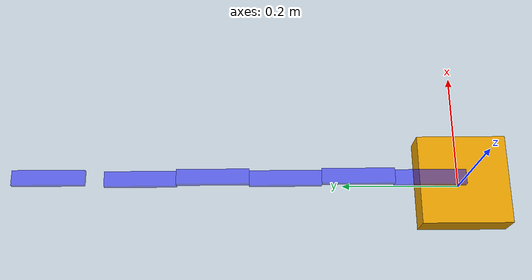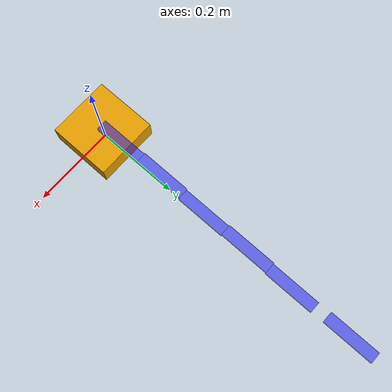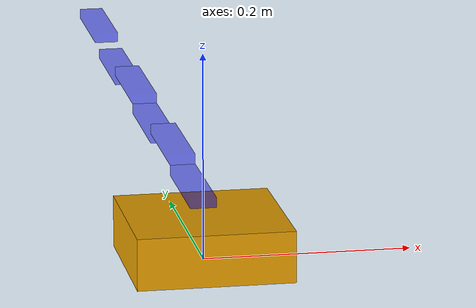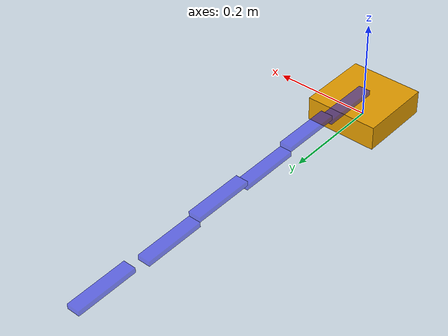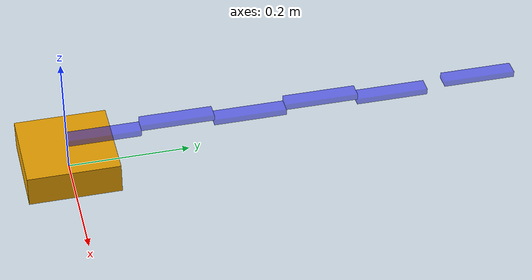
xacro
<robot name="my_robot">
  <!-- the model -->
  <link name="base_link">
    <inertial>
      <mass value="1000" />
      <origin xyz="0 0 0" />
      <inertia ixx="50.0" ixy="0.0" ixz="0.0" iyy="50.0" iyz="0.0" izz="50.0" />
    </inertial>
    <visual>
      <origin rpy="0 0 0" xyz="0 0 0.02"/>
      <geometry>
        <box size="0.15 0.15 0.05" />
      </geometry>
    </visual>
    <collision>
      <origin rpy="0 0 0" xyz="0 0 0.02"/>
      <geometry>
        <box size="0.15 0.15 0.06" />
      </geometry>
    </collision>
  </link>

  <joint name="joint1" type="continuous">
    <origin rpy="0 1.57079632679 0" xyz="0 0 0.05"/>
    <parent link="base_link"/>
    <child link="arm_link1"/>
  </joint>

  <link name="arm_link1">
    <inertial>
      <origin rpy="0 0 0" xyz="-0.005 0.06 0"/>
      <mass value="0.1"/>
      <inertia ixx="1.67E-03" ixy="0" ixz="0" iyy="0.02166" iyz="0" izz="0.02166"/>
    </inertial>
    <visual>
      <origin rpy="0 0 0" xyz="-0.005 0.06 0"/>
      <geometry>
        <box size="0.01 0.12 0.025" />
        <!-- does not need to match collision -->
      </geometry>
      <material name="">
        <color rgba="0 0 1 0.5"/>
      </material>
    </visual>
    <collision>
      <origin rpy="0 0 0" xyz="-0.005 0.06 0"/>
      <geometry>
        <box size="0.01 0.12 0.025" />
      </geometry>
    </collision>
  </link>

  <joint name="joint2" type="continuous">
    <origin rpy="0 0 0" xyz="-0.01 0.12 0"/>
    <parent link="arm_link1"/>
    <child link="arm_link2"/>
  </joint>

  <link name="arm_link2">
    <inertial>
      <origin rpy="0 0 0" xyz="-0.005 0.06 0"/>
      <mass value="0.1"/>
      <inertia ixx="1.67E-03" ixy="0" ixz="0" iyy="0.02166" iyz="0" izz="0.02166"/>
    </inertial>
    <visual>
      <origin rpy="0 0 0" xyz="-0.005 0.06 0"/>
      <geometry>
        <box size="0.01 0.12 0.025" />
        <!-- does not need to match collision -->
      </geometry>
      <material name="">
        <color rgba="0 0 1 0.5"/>
      </material>
    </visual>
    <collision>
      <origin rpy="0 0 0" xyz="-0.005 0.06 0"/>
      <geometry>
        <box size="0.01 0.12 0.025" />
      </geometry>
    </collision>
  </link>

  <joint name="joint3" type="continuous">
    <origin rpy="0 0 0" xyz="0.01 0.12 0"/>
    <parent link="arm_link2"/>
    <child link="arm_link3"/>
  </joint>

  <link name="arm_link3">
    <inertial>
      <origin rpy="0 0 0" xyz="-0.005 0.06 0"/>
      <mass value="0.1"/>
      <inertia ixx="1.67E-03" ixy="0" ixz="0" iyy="0.02166" iyz="0" izz="0.02166"/>
    </inertial>
    <visual>
      <origin rpy="0 0 0" xyz="-0.005 0.06 0"/>
      <geometry>
        <box size="0.01 0.12 0.025" />
        <!-- does not need to match collision -->
      </geometry>
      <material name="">
        <color rgba="0 0 1 0.5"/>
      </material>
    </visual>
    <collision>
      <origin rpy="0 0 0" xyz="-0.005 0.06 0"/>
      <geometry>
        <box size="0.01 0.12 0.025" />
      </geometry>
    </collision>
  </link>

  <joint name="joint4" type="continuous">
    <origin rpy="0 0 0" xyz="-0.01 0.12 0"/>
    <parent link="arm_link3"/>
    <child link="arm_link4"/>
  </joint>

  <link name="arm_link4">
    <inertial>
      <origin rpy="0 0 0" xyz="-0.005 0.06 0"/>
      <mass value="0.1"/>
      <inertia ixx="1.67E-03" ixy="0" ixz="0" iyy="0.02166" iyz="0" izz="0.02166"/>
    </inertial>
    <visual>
      <origin rpy="0 0 0" xyz="-0.005 0.06 0"/>
      <geometry>
        <box size="0.01 0.12 0.025" />
        <!-- does not need to match collision -->
      </geometry>
      <material name="">
        <color rgba="0 0 1 0.5"/>
      </material>
    </visual>
    <collision>
      <origin rpy="0 0 0" xyz="-0.005 0.06 0"/>
      <geometry>
        <box size="0.01 0.12 0.025" />
      </geometry>
    </collision>
  </link>

  <joint name="joint5" type="continuous">
    <origin rpy="0 0 0" xyz="0.01 0.12 0"/>
    <parent link="arm_link4"/>
    <child link="arm_link5"/>
  </joint>

  <link name="arm_link5">
    <inertial>
      <origin rpy="0 0 0" xyz="-0.005 0.06 0"/>
      <mass value="0.1"/>
      <inertia ixx="1.67E-03" ixy="0" ixz="0" iyy="0.02166" iyz="0" izz="0.02166"/>
    </inertial>
    <visual>
      <origin rpy="0 0 0" xyz="-0.005 0.06 0"/>
      <geometry>
        <box size="0.01 0.12 0.025" />
        <!-- does not need to match collision -->
      </geometry>
      <material name="">
        <color rgba="0 0 1 0.5"/>
      </material>
    </visual>
    <collision>
      <origin rpy="0 0 0" xyz="-0.005 0.06 0"/>
      <geometry>
        <box size="0.01 0.12 0.025" />
      </geometry>
    </collision>
  </link>

  <joint name="joint6" type="continuous">
    <origin rpy="0 0 0" xyz="-0.01 0.15 0"/>
    <parent link="arm_link5"/>
    <child link="arm_link6"/>
  </joint>

  <link name="arm_link6">
    <inertial>
      <origin rpy="0 0 0" xyz="-0.005 0.06 0"/>
      <mass value="0.1"/>
      <inertia ixx="1.67E-03" ixy="0" ixz="0" iyy="0.02166" iyz="0" izz="0.02166"/>
    </inertial>
    <visual>
      <origin rpy="0 0 0" xyz="-0.005 0.06 0"/>
      <geometry>
        <box size="0.01 0.12 0.025" />
        <!-- does not need to match collision -->
      </geometry>
      <material name="">
        <color rgba="0 0 1 0.5"/>
      </material>
    </visual>
    <collision>
      <origin rpy="0 0 0" xyz="-0.005 0.06 0"/>
      <geometry>
        <box size="0.01 0.12 0.025" />
      </geometry>
    </collision>
  </link>
</robot>
